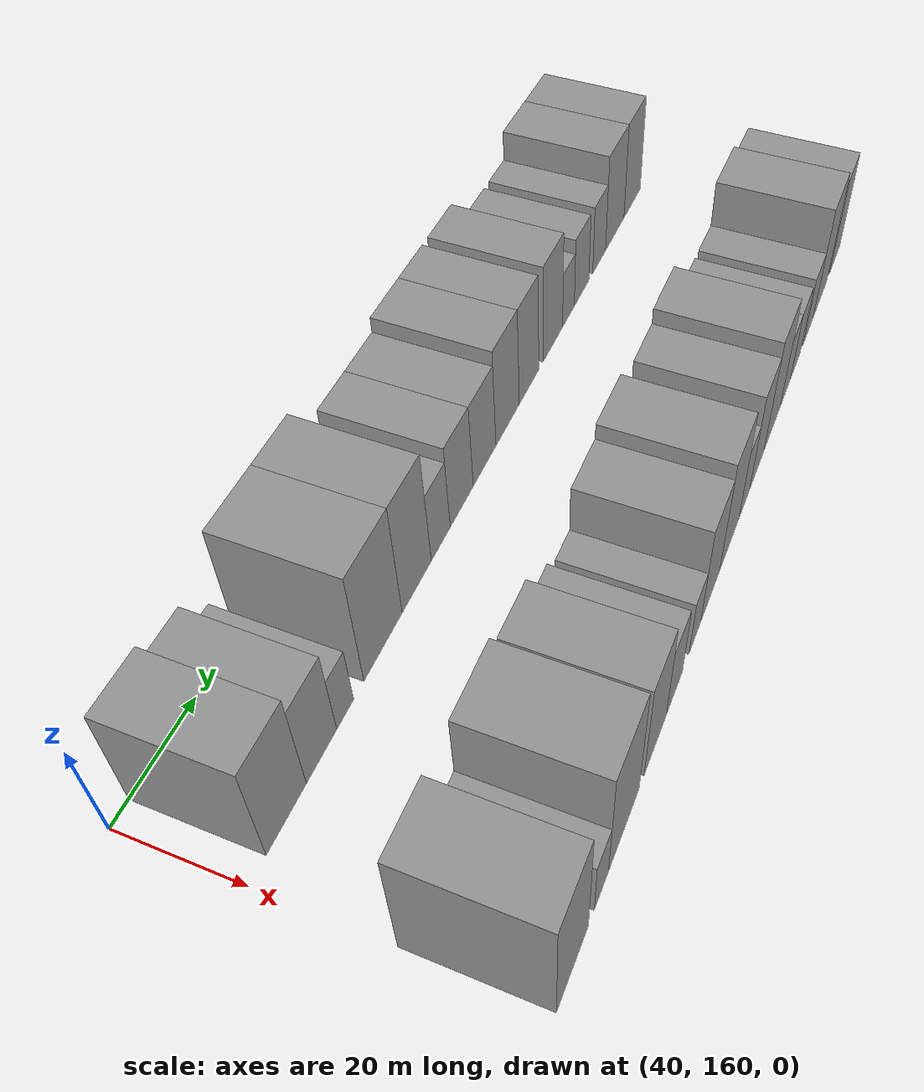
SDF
<sdf version="1.6">
 <world name="default">
  <model name="building_48">
   <static>1</static>
   <pose>50.0000 169.3280 0 0.000000 0.000000 0.000000</pose>
   <link name="link">
    <pose>0 0 10.50 0 0 0</pose>
    <collision name="collision"><geometry><box><size>20.0000 10.2309 21.0000</size></box></geometry></collision>
    <visual name="visual">
     <cast_shadows>0</cast_shadows>
     <geometry><box><size>20.0000 10.2309 21.0000</size></box></geometry>
     <material>
      <script>
       <uri>model://grey_wall/materials/scripts</uri>
       <uri>model://grey_wall/materials/textures</uri>
       <name>vrc/grey_wall</name>
      </script>
     </material>
    </visual>
   </link>
  </model>
  <model name="building_49">
   <static>1</static>
   <pose>50.0000 178.5929 0 0.000000 0.000000 0.000000</pose>
   <link name="link">
    <pose>0 0 9.00 0 0 0</pose>
    <collision name="collision"><geometry><box><size>20.0000 8.2989 18.0000</size></box></geometry></collision>
    <visual name="visual">
     <cast_shadows>0</cast_shadows>
     <geometry><box><size>20.0000 8.2989 18.0000</size></box></geometry>
     <material>
      <script>
       <uri>model://grey_wall/materials/scripts</uri>
       <uri>model://grey_wall/materials/textures</uri>
       <name>vrc/grey_wall</name>
      </script>
     </material>
    </visual>
   </link>
  </model>
  <model name="building_50">
   <static>1</static>
   <pose>50.0000 185.1520 0 0.000000 0.000000 0.000000</pose>
   <link name="link">
    <pose>0 0 6.00 0 0 0</pose>
    <collision name="collision"><geometry><box><size>20.0000 4.8194 12.0000</size></box></geometry></collision>
    <visual name="visual">
     <cast_shadows>0</cast_shadows>
     <geometry><box><size>20.0000 4.8194 12.0000</size></box></geometry>
     <material>
      <script>
       <uri>model://grey_wall/materials/scripts</uri>
       <uri>model://grey_wall/materials/textures</uri>
       <name>vrc/grey_wall</name>
      </script>
     </material>
    </visual>
   </link>
  </model>
  <model name="building_51">
   <static>1</static>
   <pose>50.0000 196.5299 0 0.000000 0.000000 0.000000</pose>
   <link name="link">
    <pose>0 0 12.00 0 0 0</pose>
    <collision name="collision"><geometry><box><size>20.0000 11.9364 24.0000</size></box></geometry></collision>
    <visual name="visual">
     <cast_shadows>0</cast_shadows>
     <geometry><box><size>20.0000 11.9364 24.0000</size></box></geometry>
     <material>
      <script>
       <uri>model://grey_wall/materials/scripts</uri>
       <uri>model://grey_wall/materials/textures</uri>
       <name>vrc/grey_wall</name>
      </script>
     </material>
    </visual>
   </link>
  </model>
  <model name="building_52">
   <static>1</static>
   <pose>50.0000 207.3973 0 0.000000 0.000000 0.000000</pose>
   <link name="link">
    <pose>0 0 12.00 0 0 0</pose>
    <collision name="collision"><geometry><box><size>20.0000 9.7985 24.0000</size></box></geometry></collision>
    <visual name="visual">
     <cast_shadows>0</cast_shadows>
     <geometry><box><size>20.0000 9.7985 24.0000</size></box></geometry>
     <material>
      <script>
       <uri>model://grey_wall/materials/scripts</uri>
       <uri>model://grey_wall/materials/textures</uri>
       <name>vrc/grey_wall</name>
      </script>
     </material>
    </visual>
   </link>
  </model>
  <model name="building_53">
   <static>1</static>
   <pose>50.0000 215.6552 0 0.000000 0.000000 0.000000</pose>
   <link name="link">
    <pose>0 0 7.50 0 0 0</pose>
    <collision name="collision"><geometry><box><size>20.0000 6.7173 15.0000</size></box></geometry></collision>
    <visual name="visual">
     <cast_shadows>0</cast_shadows>
     <geometry><box><size>20.0000 6.7173 15.0000</size></box></geometry>
     <material>
      <script>
       <uri>model://grey_wall/materials/scripts</uri>
       <uri>model://grey_wall/materials/textures</uri>
       <name>vrc/grey_wall</name>
      </script>
     </material>
    </visual>
   </link>
  </model>
  <model name="building_54">
   <static>1</static>
   <pose>50.0000 223.3062 0 0.000000 0.000000 0.000000</pose>
   <link name="link">
    <pose>0 0 9.00 0 0 0</pose>
    <collision name="collision"><geometry><box><size>20.0000 8.5845 18.0000</size></box></geometry></collision>
    <visual name="visual">
     <cast_shadows>0</cast_shadows>
     <geometry><box><size>20.0000 8.5845 18.0000</size></box></geometry>
     <material>
      <script>
       <uri>model://grey_wall/materials/scripts</uri>
       <uri>model://grey_wall/materials/textures</uri>
       <name>vrc/grey_wall</name>
      </script>
     </material>
    </visual>
   </link>
  </model>
  <model name="building_55">
   <static>1</static>
   <pose>50.0000 232.0798 0 0.000000 0.000000 0.000000</pose>
   <link name="link">
    <pose>0 0 9.00 0 0 0</pose>
    <collision name="collision"><geometry><box><size>20.0000 8.9626 18.0000</size></box></geometry></collision>
    <visual name="visual">
     <cast_shadows>0</cast_shadows>
     <geometry><box><size>20.0000 8.9626 18.0000</size></box></geometry>
     <material>
      <script>
       <uri>model://grey_wall/materials/scripts</uri>
       <uri>model://grey_wall/materials/textures</uri>
       <name>vrc/grey_wall</name>
      </script>
     </material>
    </visual>
   </link>
  </model>
  <model name="building_56">
   <static>1</static>
   <pose>50.0000 241.4460 0 0.000000 0.000000 0.000000</pose>
   <link name="link">
    <pose>0 0 10.50 0 0 0</pose>
    <collision name="collision"><geometry><box><size>20.0000 9.7699 21.0000</size></box></geometry></collision>
    <visual name="visual">
     <cast_shadows>0</cast_shadows>
     <geometry><box><size>20.0000 9.7699 21.0000</size></box></geometry>
     <material>
      <script>
       <uri>model://grey_wall/materials/scripts</uri>
       <uri>model://grey_wall/materials/textures</uri>
       <name>vrc/grey_wall</name>
      </script>
     </material>
    </visual>
   </link>
  </model>
  <model name="building_57">
   <static>1</static>
   <pose>50.0000 250.6309 0 0.000000 0.000000 0.000000</pose>
   <link name="link">
    <pose>0 0 10.50 0 0 0</pose>
    <collision name="collision"><geometry><box><size>20.0000 8.5998 21.0000</size></box></geometry></collision>
    <visual name="visual">
     <cast_shadows>0</cast_shadows>
     <geometry><box><size>20.0000 8.5998 21.0000</size></box></geometry>
     <material>
      <script>
       <uri>model://grey_wall/materials/scripts</uri>
       <uri>model://grey_wall/materials/textures</uri>
       <name>vrc/grey_wall</name>
      </script>
     </material>
    </visual>
   </link>
  </model>
  <model name="building_58">
   <static>1</static>
   <pose>50.0000 261.5186 0 0.000000 0.000000 0.000000</pose>
   <link name="link">
    <pose>0 0 10.50 0 0 0</pose>
    <collision name="collision"><geometry><box><size>20.0000 9.1755 21.0000</size></box></geometry></collision>
    <visual name="visual">
     <cast_shadows>0</cast_shadows>
     <geometry><box><size>20.0000 9.1755 21.0000</size></box></geometry>
     <material>
      <script>
       <uri>model://grey_wall/materials/scripts</uri>
       <uri>model://grey_wall/materials/textures</uri>
       <name>vrc/grey_wall</name>
      </script>
     </material>
    </visual>
   </link>
  </model>
  <model name="building_59">
   <static>1</static>
   <pose>50.0000 268.9922 0 0.000000 0.000000 0.000000</pose>
   <link name="link">
    <pose>0 0 6.00 0 0 0</pose>
    <collision name="collision"><geometry><box><size>20.0000 5.7719 12.0000</size></box></geometry></collision>
    <visual name="visual">
     <cast_shadows>0</cast_shadows>
     <geometry><box><size>20.0000 5.7719 12.0000</size></box></geometry>
     <material>
      <script>
       <uri>model://grey_wall/materials/scripts</uri>
       <uri>model://grey_wall/materials/textures</uri>
       <name>vrc/grey_wall</name>
      </script>
     </material>
    </visual>
   </link>
  </model>
  <model name="building_60">
   <static>1</static>
   <pose>50.0000 275.5932 0 0.000000 0.000000 0.000000</pose>
   <link name="link">
    <pose>0 0 7.50 0 0 0</pose>
    <collision name="collision"><geometry><box><size>20.0000 7.4302 15.0000</size></box></geometry></collision>
    <visual name="visual">
     <cast_shadows>0</cast_shadows>
     <geometry><box><size>20.0000 7.4302 15.0000</size></box></geometry>
     <material>
      <script>
       <uri>model://grey_wall/materials/scripts</uri>
       <uri>model://grey_wall/materials/textures</uri>
       <name>vrc/grey_wall</name>
      </script>
     </material>
    </visual>
   </link>
  </model>
  <model name="building_61">
   <static>1</static>
   <pose>50.0000 284.7590 0 0.000000 0.000000 0.000000</pose>
   <link name="link">
    <pose>0 0 7.50 0 0 0</pose>
    <collision name="collision"><geometry><box><size>20.0000 6.9014 15.0000</size></box></geometry></collision>
    <visual name="visual">
     <cast_shadows>0</cast_shadows>
     <geometry><box><size>20.0000 6.9014 15.0000</size></box></geometry>
     <material>
      <script>
       <uri>model://grey_wall/materials/scripts</uri>
       <uri>model://grey_wall/materials/textures</uri>
       <name>vrc/grey_wall</name>
      </script>
     </material>
    </visual>
   </link>
  </model>
  <model name="building_62">
   <static>1</static>
   <pose>50.0000 293.3827 0 0.000000 0.000000 0.000000</pose>
   <link name="link">
    <pose>0 0 10.50 0 0 0</pose>
    <collision name="collision"><geometry><box><size>20.0000 10.3460 21.0000</size></box></geometry></collision>
    <visual name="visual">
     <cast_shadows>0</cast_shadows>
     <geometry><box><size>20.0000 10.3460 21.0000</size></box></geometry>
     <material>
      <script>
       <uri>model://grey_wall/materials/scripts</uri>
       <uri>model://grey_wall/materials/textures</uri>
       <name>vrc/grey_wall</name>
      </script>
     </material>
    </visual>
   </link>
  </model>
  <model name="building_63">
   <static>1</static>
   <pose>50.0000 303.3635 0 0.000000 0.000000 0.000000</pose>
   <link name="link">
    <pose>0 0 10.50 0 0 0</pose>
    <collision name="collision"><geometry><box><size>20.0000 9.6156 21.0000</size></box></geometry></collision>
    <visual name="visual">
     <cast_shadows>0</cast_shadows>
     <geometry><box><size>20.0000 9.6156 21.0000</size></box></geometry>
     <material>
      <script>
       <uri>model://grey_wall/materials/scripts</uri>
       <uri>model://grey_wall/materials/textures</uri>
       <name>vrc/grey_wall</name>
      </script>
     </material>
    </visual>
   </link>
  </model>
  <model name="building_113">
   <static>1</static>
   <pose>90.0000 165.4637 0 0.000000 0.000000 0.000000</pose>
   <link name="link">
    <pose>0 0 12.00 0 0 0</pose>
    <collision name="collision"><geometry><box><size>20.0000 10.5160 24.0000</size></box></geometry></collision>
    <visual name="visual">
     <cast_shadows>0</cast_shadows>
     <geometry><box><size>20.0000 10.5160 24.0000</size></box></geometry>
     <material>
      <script>
       <uri>model://grey_wall/materials/scripts</uri>
       <uri>model://grey_wall/materials/textures</uri>
       <name>vrc/grey_wall</name>
      </script>
     </material>
    </visual>
   </link>
  </model>
  <model name="building_114">
   <static>1</static>
   <pose>90.0000 175.2450 0 0.000000 0.000000 0.000000</pose>
   <link name="link">
    <pose>0 0 6.00 0 0 0</pose>
    <collision name="collision"><geometry><box><size>20.0000 5.0466 12.0000</size></box></geometry></collision>
    <visual name="visual">
     <cast_shadows>0</cast_shadows>
     <geometry><box><size>20.0000 5.0466 12.0000</size></box></geometry>
     <material>
      <script>
       <uri>model://grey_wall/materials/scripts</uri>
       <uri>model://grey_wall/materials/textures</uri>
       <name>vrc/grey_wall</name>
      </script>
     </material>
    </visual>
   </link>
  </model>
  <model name="building_115">
   <static>1</static>
   <pose>90.0000 183.6049 0 0.000000 0.000000 0.000000</pose>
   <link name="link">
    <pose>0 0 12.00 0 0 0</pose>
    <collision name="collision"><geometry><box><size>20.0000 11.6730 24.0000</size></box></geometry></collision>
    <visual name="visual">
     <cast_shadows>0</cast_shadows>
     <geometry><box><size>20.0000 11.6730 24.0000</size></box></geometry>
     <material>
      <script>
       <uri>model://grey_wall/materials/scripts</uri>
       <uri>model://grey_wall/materials/textures</uri>
       <name>vrc/grey_wall</name>
      </script>
     </material>
    </visual>
   </link>
  </model>
  <model name="building_116">
   <static>1</static>
   <pose>90.0000 196.1073 0 0.000000 0.000000 0.000000</pose>
   <link name="link">
    <pose>0 0 10.50 0 0 0</pose>
    <collision name="collision"><geometry><box><size>20.0000 9.3318 21.0000</size></box></geometry></collision>
    <visual name="visual">
     <cast_shadows>0</cast_shadows>
     <geometry><box><size>20.0000 9.3318 21.0000</size></box></geometry>
     <material>
      <script>
       <uri>model://grey_wall/materials/scripts</uri>
       <uri>model://grey_wall/materials/textures</uri>
       <name>vrc/grey_wall</name>
      </script>
     </material>
    </visual>
   </link>
  </model>
  <model name="building_117">
   <static>1</static>
   <pose>90.0000 204.3798 0 0.000000 0.000000 0.000000</pose>
   <link name="link">
    <pose>0 0 7.50 0 0 0</pose>
    <collision name="collision"><geometry><box><size>20.0000 7.2131 15.0000</size></box></geometry></collision>
    <visual name="visual">
     <cast_shadows>0</cast_shadows>
     <geometry><box><size>20.0000 7.2131 15.0000</size></box></geometry>
     <material>
      <script>
       <uri>model://grey_wall/materials/scripts</uri>
       <uri>model://grey_wall/materials/textures</uri>
       <name>vrc/grey_wall</name>
      </script>
     </material>
    </visual>
   </link>
  </model>
  <model name="building_118">
   <static>1</static>
   <pose>90.0000 213.7672 0 0.000000 0.000000 0.000000</pose>
   <link name="link">
    <pose>0 0 6.00 0 0 0</pose>
    <collision name="collision"><geometry><box><size>20.0000 5.5617 12.0000</size></box></geometry></collision>
    <visual name="visual">
     <cast_shadows>0</cast_shadows>
     <geometry><box><size>20.0000 5.5617 12.0000</size></box></geometry>
     <material>
      <script>
       <uri>model://grey_wall/materials/scripts</uri>
       <uri>model://grey_wall/materials/textures</uri>
       <name>vrc/grey_wall</name>
      </script>
     </material>
    </visual>
   </link>
  </model>
  <model name="building_119">
   <static>1</static>
   <pose>90.0000 221.3002 0 0.000000 0.000000 0.000000</pose>
   <link name="link">
    <pose>0 0 10.50 0 0 0</pose>
    <collision name="collision"><geometry><box><size>20.0000 9.5045 21.0000</size></box></geometry></collision>
    <visual name="visual">
     <cast_shadows>0</cast_shadows>
     <geometry><box><size>20.0000 9.5045 21.0000</size></box></geometry>
     <material>
      <script>
       <uri>model://grey_wall/materials/scripts</uri>
       <uri>model://grey_wall/materials/textures</uri>
       <name>vrc/grey_wall</name>
      </script>
     </material>
    </visual>
   </link>
  </model>
  <model name="building_120">
   <static>1</static>
   <pose>90.0000 231.2058 0 0.000000 0.000000 0.000000</pose>
   <link name="link">
    <pose>0 0 12.00 0 0 0</pose>
    <collision name="collision"><geometry><box><size>20.0000 10.3067 24.0000</size></box></geometry></collision>
    <visual name="visual">
     <cast_shadows>0</cast_shadows>
     <geometry><box><size>20.0000 10.3067 24.0000</size></box></geometry>
     <material>
      <script>
       <uri>model://grey_wall/materials/scripts</uri>
       <uri>model://grey_wall/materials/textures</uri>
       <name>vrc/grey_wall</name>
      </script>
     </material>
    </visual>
   </link>
  </model>
  <model name="building_121">
   <static>1</static>
   <pose>90.0000 239.3805 0 0.000000 0.000000 0.000000</pose>
   <link name="link">
    <pose>0 0 7.50 0 0 0</pose>
    <collision name="collision"><geometry><box><size>20.0000 6.0427 15.0000</size></box></geometry></collision>
    <visual name="visual">
     <cast_shadows>0</cast_shadows>
     <geometry><box><size>20.0000 6.0427 15.0000</size></box></geometry>
     <material>
      <script>
       <uri>model://grey_wall/materials/scripts</uri>
       <uri>model://grey_wall/materials/textures</uri>
       <name>vrc/grey_wall</name>
      </script>
     </material>
    </visual>
   </link>
  </model>
  <model name="building_122">
   <static>1</static>
   <pose>90.0000 246.7032 0 0.000000 0.000000 0.000000</pose>
   <link name="link">
    <pose>0 0 10.50 0 0 0</pose>
    <collision name="collision"><geometry><box><size>20.0000 8.6027 21.0000</size></box></geometry></collision>
    <visual name="visual">
     <cast_shadows>0</cast_shadows>
     <geometry><box><size>20.0000 8.6027 21.0000</size></box></geometry>
     <material>
      <script>
       <uri>model://grey_wall/materials/scripts</uri>
       <uri>model://grey_wall/materials/textures</uri>
       <name>vrc/grey_wall</name>
      </script>
     </material>
    </visual>
   </link>
  </model>
  <model name="building_123">
   <static>1</static>
   <pose>90.0000 256.1412 0 0.000000 0.000000 0.000000</pose>
   <link name="link">
    <pose>0 0 12.00 0 0 0</pose>
    <collision name="collision"><geometry><box><size>20.0000 10.2732 24.0000</size></box></geometry></collision>
    <visual name="visual">
     <cast_shadows>0</cast_shadows>
     <geometry><box><size>20.0000 10.2732 24.0000</size></box></geometry>
     <material>
      <script>
       <uri>model://grey_wall/materials/scripts</uri>
       <uri>model://grey_wall/materials/textures</uri>
       <name>vrc/grey_wall</name>
      </script>
     </material>
    </visual>
   </link>
  </model>
  <model name="building_124">
   <static>1</static>
   <pose>90.0000 264.6448 0 0.000000 0.000000 0.000000</pose>
   <link name="link">
    <pose>0 0 7.50 0 0 0</pose>
    <collision name="collision"><geometry><box><size>20.0000 6.7341 15.0000</size></box></geometry></collision>
    <visual name="visual">
     <cast_shadows>0</cast_shadows>
     <geometry><box><size>20.0000 6.7341 15.0000</size></box></geometry>
     <material>
      <script>
       <uri>model://grey_wall/materials/scripts</uri>
       <uri>model://grey_wall/materials/textures</uri>
       <name>vrc/grey_wall</name>
      </script>
     </material>
    </visual>
   </link>
  </model>
  <model name="building_125">
   <static>1</static>
   <pose>90.0000 271.4513 0 0.000000 0.000000 0.000000</pose>
   <link name="link">
    <pose>0 0 7.50 0 0 0</pose>
    <collision name="collision"><geometry><box><size>20.0000 6.8788 15.0000</size></box></geometry></collision>
    <visual name="visual">
     <cast_shadows>0</cast_shadows>
     <geometry><box><size>20.0000 6.8788 15.0000</size></box></geometry>
     <material>
      <script>
       <uri>model://grey_wall/materials/scripts</uri>
       <uri>model://grey_wall/materials/textures</uri>
       <name>vrc/grey_wall</name>
      </script>
     </material>
    </visual>
   </link>
  </model>
  <model name="building_126">
   <static>1</static>
   <pose>90.0000 280.4668 0 0.000000 0.000000 0.000000</pose>
   <link name="link">
    <pose>0 0 7.50 0 0 0</pose>
    <collision name="collision"><geometry><box><size>20.0000 7.1521 15.0000</size></box></geometry></collision>
    <visual name="visual">
     <cast_shadows>0</cast_shadows>
     <geometry><box><size>20.0000 7.1521 15.0000</size></box></geometry>
     <material>
      <script>
       <uri>model://grey_wall/materials/scripts</uri>
       <uri>model://grey_wall/materials/textures</uri>
       <name>vrc/grey_wall</name>
      </script>
     </material>
    </visual>
   </link>
  </model>
  <model name="building_127">
   <static>1</static>
   <pose>90.0000 289.4081 0 0.000000 0.000000 0.000000</pose>
   <link name="link">
    <pose>0 0 12.00 0 0 0</pose>
    <collision name="collision"><geometry><box><size>20.0000 10.7305 24.0000</size></box></geometry></collision>
    <visual name="visual">
     <cast_shadows>0</cast_shadows>
     <geometry><box><size>20.0000 10.7305 24.0000</size></box></geometry>
     <material>
      <script>
       <uri>model://grey_wall/materials/scripts</uri>
       <uri>model://grey_wall/materials/textures</uri>
       <name>vrc/grey_wall</name>
      </script>
     </material>
    </visual>
   </link>
  </model>
  <model name="building_128">
   <static>1</static>
   <pose>90.0000 301.0572 0 0.000000 0.000000 0.000000</pose>
   <link name="link">
    <pose>0 0 10.50 0 0 0</pose>
    <collision name="collision"><geometry><box><size>20.0000 8.5676 21.0000</size></box></geometry></collision>
    <visual name="visual">
     <cast_shadows>0</cast_shadows>
     <geometry><box><size>20.0000 8.5676 21.0000</size></box></geometry>
     <material>
      <script>
       <uri>model://grey_wall/materials/scripts</uri>
       <uri>model://grey_wall/materials/textures</uri>
       <name>vrc/grey_wall</name>
      </script>
     </material>
    </visual>
   </link>
  </model>
 </world>
</sdf>
